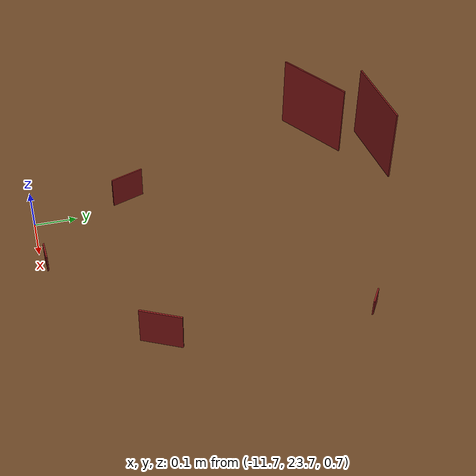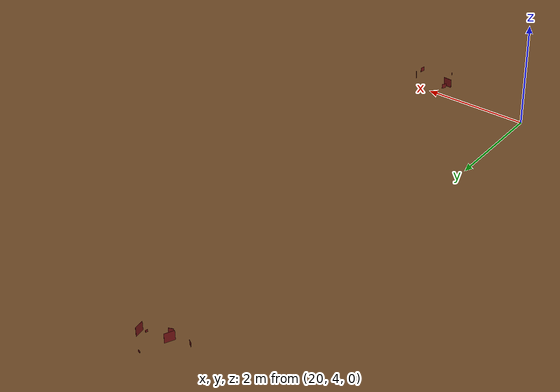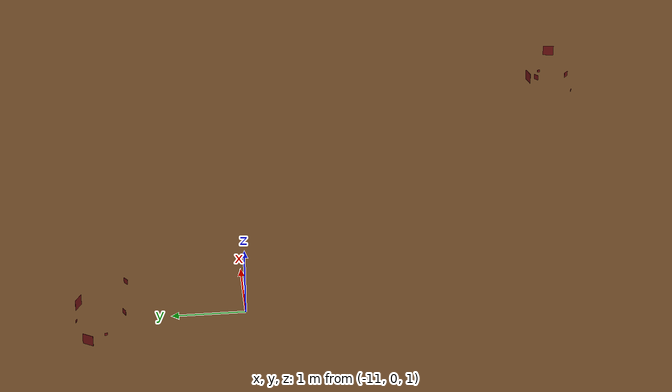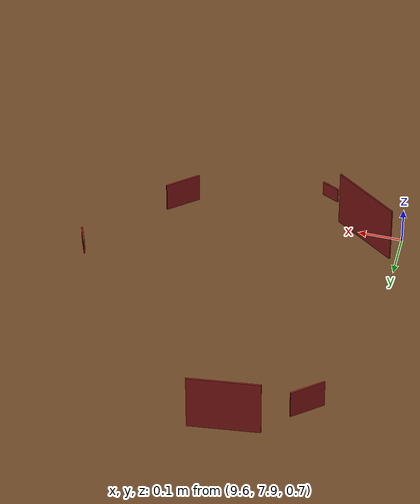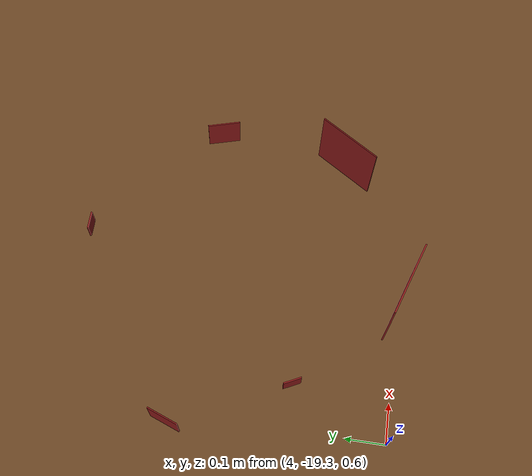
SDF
<sdf version="1.9">
 <world name="flatforest">
  <scene>
   <grid>false</grid>
   <ambient>1.0 1.0 1.0 1</ambient>
   <background>0.6 0.8 1.0 1</background>
   <shadows>false</shadows>
  </scene>
  <physics name="20ms" type="dart">
   <max_step_size>0.02</max_step_size>
   <real_time_factor>2.0</real_time_factor>
   <real_time_update_rate>100</real_time_update_rate>
   <dart>
    <collision_detector>bullet</collision_detector>
    <solver><solver_type>dantzig</solver_type></solver>
   </dart>
  </physics>
  <plugin name="ignition::gazebo::systems::Physics" filename="ignition-gazebo-physics-system"/>
  <plugin name="ignition::gazebo::systems::Sensors" filename="ignition-gazebo-sensors-system">
   <render_engine>ogre2</render_engine>
  </plugin>
  <plugin name="ignition::gazebo::systems::SceneBroadcaster" filename="ignition-gazebo-scene-broadcaster-system"/>
  <plugin name="ignition::gazebo::systems::UserCommands" filename="ignition-gazebo-user-commands-system"/>
  <plugin name="ignition::gazebo::systems::Imu" filename="libignition-gazebo-imu-system.so"/>
  <gravity>0 0 -9.8</gravity>
  <magnetic_field>6e-06 2.3e-05 -4.2e-05</magnetic_field>
  <atmosphere type="adiabatic"/>
  <model name="ground_plane">
   <static>true</static>
   <link name="link">
    <collision name="collision">
     <geometry><plane><normal>0 0 1</normal><size>110 110</size></plane></geometry>
     <surface><friction><ode><mu>50</mu></ode></friction></surface>
    </collision>
    <visual name="visual">
     <geometry><plane><normal>0 0 1</normal><size>110 110</size></plane></geometry>
     <material>
      <ambient>0.4 0.26 0.13 1</ambient>
      <diffuse>0.4 0.26 0.13 1</diffuse>
      <specular>0.1 0.1 0.1 1</specular>
     </material>
     <plugin filename="ignition-gazebo-label-system" name="ignition::gazebo::systems::Label">
      <label>1</label>
     </plugin>
    </visual>
   </link>
  </model>
  <light name="sun" type="directional">
   <pose>0 0 45 0 -0 0</pose>
   <intensity>1.0</intensity>
   <direction>-0.5 0.1 -0.9</direction>
   <diffuse>0.8 0.8 0.8 1</diffuse>
   <specular>0.2 0.2 0.2 1</specular>
   <attenuation>
    <range>1000</range>
    <linear>0.01</linear>
    <constant>0.90000000000000002</constant>
    <quadratic>0.001</quadratic>
   </attenuation>
   <spot><inner_angle>0</inner_angle><outer_angle>0</outer_angle><falloff>0</falloff></spot>
  </light>
  <model name="lesions_102">
   <static>true</static>
   <pose>-21.6479 0.5231 0 0 0 0</pose>
   <link name="link">
    <visual name="lesion_10">
     <pose>0.2472 0.0334 0.8630 0 0 0.38799</pose>
     <geometry><box><size>0.003 0.04 0.04</size></box></geometry>
     <material><ambient>0.55 0.1 0.1 1</ambient><diffuse>0.55 0.1 0.1 1</diffuse></material>
     <cast_shadows>false</cast_shadows>
     <plugin filename="ignition-gazebo-label-system" name="ignition::gazebo::systems::Label">
      <label>10</label>
     </plugin>
    </visual>
    <visual name="lesion_11">
     <pose>-0.1810 0.2558 1.1931 0 0 1.87503</pose>
     <geometry><box><size>0.003 0.04 0.04</size></box></geometry>
     <material><ambient>0.55 0.1 0.1 1</ambient><diffuse>0.55 0.1 0.1 1</diffuse></material>
     <cast_shadows>false</cast_shadows>
     <plugin filename="ignition-gazebo-label-system" name="ignition::gazebo::systems::Label">
      <label>11</label>
     </plugin>
    </visual>
    <visual name="lesion_12">
     <pose>-0.2961 0.1665 1.0417 0 0 2.28012</pose>
     <geometry><box><size>0.003 0.16 0.16</size></box></geometry>
     <material><ambient>0.55 0.1 0.1 1</ambient><diffuse>0.55 0.1 0.1 1</diffuse></material>
     <cast_shadows>false</cast_shadows>
     <plugin filename="ignition-gazebo-label-system" name="ignition::gazebo::systems::Label">
      <label>12</label>
     </plugin>
    </visual>
    <visual name="lesion_13">
     <pose>-0.4599 -0.2222 1.2302 0 0 3.45397</pose>
     <geometry><box><size>0.003 0.08 0.08</size></box></geometry>
     <material><ambient>0.55 0.1 0.1 1</ambient><diffuse>0.55 0.1 0.1 1</diffuse></material>
     <cast_shadows>false</cast_shadows>
     <plugin filename="ignition-gazebo-label-system" name="ignition::gazebo::systems::Label">
      <label>13</label>
     </plugin>
    </visual>
    <visual name="lesion_14">
     <pose>0.1015 -0.4620 1.0315 0 0 5.15206</pose>
     <geometry><box><size>0.003 0.16 0.16</size></box></geometry>
     <material><ambient>0.55 0.1 0.1 1</ambient><diffuse>0.55 0.1 0.1 1</diffuse></material>
     <cast_shadows>false</cast_shadows>
     <plugin filename="ignition-gazebo-label-system" name="ignition::gazebo::systems::Label">
      <label>14</label>
     </plugin>
    </visual>
    <visual name="lesion_15">
     <pose>0.2419 -0.1792 0.9591 0 0 6.02425</pose>
     <geometry><box><size>0.003 0.08 0.08</size></box></geometry>
     <material><ambient>0.55 0.1 0.1 1</ambient><diffuse>0.55 0.1 0.1 1</diffuse></material>
     <cast_shadows>false</cast_shadows>
     <plugin filename="ignition-gazebo-label-system" name="ignition::gazebo::systems::Label">
      <label>15</label>
     </plugin>
    </visual>
   </link>
  </model>
  <model name="lesions_2">
   <static>true</static>
   <pose>4.4015 -18.8129 0 0 0 0</pose>
   <link name="link">
    <visual name="lesion_16">
     <pose>0.2867 0.0106 0.7858 0 0 0.29102</pose>
     <geometry><box><size>0.003 0.08 0.08</size></box></geometry>
     <material><ambient>0.55 0.1 0.1 1</ambient><diffuse>0.55 0.1 0.1 1</diffuse></material>
     <cast_shadows>false</cast_shadows>
     <plugin filename="ignition-gazebo-label-system" name="ignition::gazebo::systems::Label">
      <label>16</label>
     </plugin>
    </visual>
    <visual name="lesion_17">
     <pose>-0.0798 0.2484 0.9085 0 0 1.59783</pose>
     <geometry><box><size>0.003 0.04 0.04</size></box></geometry>
     <material><ambient>0.55 0.1 0.1 1</ambient><diffuse>0.55 0.1 0.1 1</diffuse></material>
     <cast_shadows>false</cast_shadows>
     <plugin filename="ignition-gazebo-label-system" name="ignition::gazebo::systems::Label">
      <label>17</label>
     </plugin>
    </visual>
    <visual name="lesion_18">
     <pose>-0.4343 0.0375 0.6577 0 0 2.78888</pose>
     <geometry><box><size>0.003 0.08 0.08</size></box></geometry>
     <material><ambient>0.55 0.1 0.1 1</ambient><diffuse>0.55 0.1 0.1 1</diffuse></material>
     <cast_shadows>false</cast_shadows>
     <plugin filename="ignition-gazebo-label-system" name="ignition::gazebo::systems::Label">
      <label>18</label>
     </plugin>
    </visual>
    <visual name="lesion_19">
     <pose>-0.3618 -0.2440 0.8691 0 0 3.61042</pose>
     <geometry><box><size>0.003 0.04 0.04</size></box></geometry>
     <material><ambient>0.55 0.1 0.1 1</ambient><diffuse>0.55 0.1 0.1 1</diffuse></material>
     <cast_shadows>false</cast_shadows>
     <plugin filename="ignition-gazebo-label-system" name="ignition::gazebo::systems::Label">
      <label>19</label>
     </plugin>
    </visual>
    <visual name="lesion_20">
     <pose>-0.1839 -0.4399 1.0069 0 0 4.39341</pose>
     <geometry><box><size>0.003 0.16 0.16</size></box></geometry>
     <material><ambient>0.55 0.1 0.1 1</ambient><diffuse>0.55 0.1 0.1 1</diffuse></material>
     <cast_shadows>false</cast_shadows>
     <plugin filename="ignition-gazebo-label-system" name="ignition::gazebo::systems::Label">
      <label>20</label>
     </plugin>
    </visual>
    <visual name="lesion_21">
     <pose>0.2373 -0.3031 0.8300 0 0 5.69185</pose>
     <geometry><box><size>0.003 0.16 0.16</size></box></geometry>
     <material><ambient>0.55 0.1 0.1 1</ambient><diffuse>0.55 0.1 0.1 1</diffuse></material>
     <cast_shadows>false</cast_shadows>
     <plugin filename="ignition-gazebo-label-system" name="ignition::gazebo::systems::Label">
      <label>21</label>
     </plugin>
    </visual>
   </link>
  </model>
  <model name="lesions_118">
   <static>true</static>
   <pose>-18.5931 -9.2673 0 0 0 0</pose>
   <link name="link">
    <visual name="lesion_22">
     <pose>0.2283 0.1239 0.8571 0 0 0.63534</pose>
     <geometry><box><size>0.003 0.16 0.16</size></box></geometry>
     <material><ambient>0.55 0.1 0.1 1</ambient><diffuse>0.55 0.1 0.1 1</diffuse></material>
     <cast_shadows>false</cast_shadows>
     <plugin filename="ignition-gazebo-label-system" name="ignition::gazebo::systems::Label">
      <label>22</label>
     </plugin>
    </visual>
    <visual name="lesion_23">
     <pose>-0.2166 0.1929 0.9880 0 0 2.03870</pose>
     <geometry><box><size>0.003 0.08 0.08</size></box></geometry>
     <material><ambient>0.55 0.1 0.1 1</ambient><diffuse>0.55 0.1 0.1 1</diffuse></material>
     <cast_shadows>false</cast_shadows>
     <plugin filename="ignition-gazebo-label-system" name="ignition::gazebo::systems::Label">
      <label>23</label>
     </plugin>
    </visual>
    <visual name="lesion_24">
     <pose>-0.3650 0.1025 1.1903 0 0 2.54758</pose>
     <geometry><box><size>0.003 0.04 0.04</size></box></geometry>
     <material><ambient>0.55 0.1 0.1 1</ambient><diffuse>0.55 0.1 0.1 1</diffuse></material>
     <cast_shadows>false</cast_shadows>
     <plugin filename="ignition-gazebo-label-system" name="ignition::gazebo::systems::Label">
      <label>24</label>
     </plugin>
    </visual>
    <visual name="lesion_25">
     <pose>-0.4209 -0.2182 1.0676 0 0 3.47601</pose>
     <geometry><box><size>0.003 0.04 0.04</size></box></geometry>
     <material><ambient>0.55 0.1 0.1 1</ambient><diffuse>0.55 0.1 0.1 1</diffuse></material>
     <cast_shadows>false</cast_shadows>
     <plugin filename="ignition-gazebo-label-system" name="ignition::gazebo::systems::Label">
      <label>25</label>
     </plugin>
    </visual>
    <visual name="lesion_26">
     <pose>-0.1364 -0.4303 0.8069 0 0 4.51742</pose>
     <geometry><box><size>0.003 0.08 0.08</size></box></geometry>
     <material><ambient>0.55 0.1 0.1 1</ambient><diffuse>0.55 0.1 0.1 1</diffuse></material>
     <cast_shadows>false</cast_shadows>
     <plugin filename="ignition-gazebo-label-system" name="ignition::gazebo::systems::Label">
      <label>26</label>
     </plugin>
    </visual>
    <visual name="lesion_27">
     <pose>0.2774 -0.2091 0.7867 0 0 5.96991</pose>
     <geometry><box><size>0.003 0.16 0.16</size></box></geometry>
     <material><ambient>0.55 0.1 0.1 1</ambient><diffuse>0.55 0.1 0.1 1</diffuse></material>
     <cast_shadows>false</cast_shadows>
     <plugin filename="ignition-gazebo-label-system" name="ignition::gazebo::systems::Label">
      <label>27</label>
     </plugin>
    </visual>
   </link>
  </model>
  <model name="lesions_120">
   <static>true</static>
   <pose>21.4385 5.0004 0 0 0 0</pose>
   <link name="link">
    <visual name="lesion_28">
     <pose>0.2158 0.0888 1.0229 0 0 0.57437</pose>
     <geometry><box><size>0.003 0.16 0.16</size></box></geometry>
     <material><ambient>0.55 0.1 0.1 1</ambient><diffuse>0.55 0.1 0.1 1</diffuse></material>
     <cast_shadows>false</cast_shadows>
     <plugin filename="ignition-gazebo-label-system" name="ignition::gazebo::systems::Label">
      <label>28</label>
     </plugin>
    </visual>
    <visual name="lesion_29">
     <pose>-0.0260 0.2333 0.9021 0 0 1.43691</pose>
     <geometry><box><size>0.003 0.04 0.04</size></box></geometry>
     <material><ambient>0.55 0.1 0.1 1</ambient><diffuse>0.55 0.1 0.1 1</diffuse></material>
     <cast_shadows>false</cast_shadows>
     <plugin filename="ignition-gazebo-label-system" name="ignition::gazebo::systems::Label">
      <label>29</label>
     </plugin>
    </visual>
    <visual name="lesion_30">
     <pose>-0.3734 0.0807 0.9320 0 0 2.61258</pose>
     <geometry><box><size>0.003 0.08 0.08</size></box></geometry>
     <material><ambient>0.55 0.1 0.1 1</ambient><diffuse>0.55 0.1 0.1 1</diffuse></material>
     <cast_shadows>false</cast_shadows>
     <plugin filename="ignition-gazebo-label-system" name="ignition::gazebo::systems::Label">
      <label>30</label>
     </plugin>
    </visual>
    <visual name="lesion_31">
     <pose>-0.3029 -0.2952 0.9963 0 0 3.84912</pose>
     <geometry><box><size>0.003 0.04 0.04</size></box></geometry>
     <material><ambient>0.55 0.1 0.1 1</ambient><diffuse>0.55 0.1 0.1 1</diffuse></material>
     <cast_shadows>false</cast_shadows>
     <plugin filename="ignition-gazebo-label-system" name="ignition::gazebo::systems::Label">
      <label>31</label>
     </plugin>
    </visual>
    <visual name="lesion_32">
     <pose>-0.1058 -0.4983 0.6511 0 0 4.62471</pose>
     <geometry><box><size>0.003 0.16 0.16</size></box></geometry>
     <material><ambient>0.55 0.1 0.1 1</ambient><diffuse>0.55 0.1 0.1 1</diffuse></material>
     <cast_shadows>false</cast_shadows>
     <plugin filename="ignition-gazebo-label-system" name="ignition::gazebo::systems::Label">
      <label>32</label>
     </plugin>
    </visual>
    <visual name="lesion_33">
     <pose>0.2469 -0.1659 0.9616 0 0 6.06750</pose>
     <geometry><box><size>0.003 0.08 0.08</size></box></geometry>
     <material><ambient>0.55 0.1 0.1 1</ambient><diffuse>0.55 0.1 0.1 1</diffuse></material>
     <cast_shadows>false</cast_shadows>
     <plugin filename="ignition-gazebo-label-system" name="ignition::gazebo::systems::Label">
      <label>33</label>
     </plugin>
    </visual>
   </link>
  </model>
  <model name="lesions_133">
   <static>true</static>
   <pose>4.3214 23.0981 0 0 0 0</pose>
   <link name="link">
    <visual name="lesion_34">
     <pose>0.2770 -0.0623 1.1928 0 0 0.09786</pose>
     <geometry><box><size>0.003 0.16 0.16</size></box></geometry>
     <material><ambient>0.55 0.1 0.1 1</ambient><diffuse>0.55 0.1 0.1 1</diffuse></material>
     <cast_shadows>false</cast_shadows>
     <plugin filename="ignition-gazebo-label-system" name="ignition::gazebo::systems::Label">
      <label>34</label>
     </plugin>
    </visual>
    <visual name="lesion_35">
     <pose>-0.2545 0.2304 0.6852 0 0 2.08365</pose>
     <geometry><box><size>0.003 0.08 0.08</size></box></geometry>
     <material><ambient>0.55 0.1 0.1 1</ambient><diffuse>0.55 0.1 0.1 1</diffuse></material>
     <cast_shadows>false</cast_shadows>
     <plugin filename="ignition-gazebo-label-system" name="ignition::gazebo::systems::Label">
      <label>35</label>
     </plugin>
    </visual>
    <visual name="lesion_36">
     <pose>-0.3579 0.1323 1.0880 0 0 2.46953</pose>
     <geometry><box><size>0.003 0.16 0.16</size></box></geometry>
     <material><ambient>0.55 0.1 0.1 1</ambient><diffuse>0.55 0.1 0.1 1</diffuse></material>
     <cast_shadows>false</cast_shadows>
     <plugin filename="ignition-gazebo-label-system" name="ignition::gazebo::systems::Label">
      <label>36</label>
     </plugin>
    </visual>
    <visual name="lesion_37">
     <pose>-0.4222 -0.2165 0.9902 0 0 3.47066</pose>
     <geometry><box><size>0.003 0.08 0.08</size></box></geometry>
     <material><ambient>0.55 0.1 0.1 1</ambient><diffuse>0.55 0.1 0.1 1</diffuse></material>
     <cast_shadows>false</cast_shadows>
     <plugin filename="ignition-gazebo-label-system" name="ignition::gazebo::systems::Label">
      <label>37</label>
     </plugin>
    </visual>
    <visual name="lesion_38">
     <pose>-0.1008 -0.4428 1.1145 0 0 4.62502</pose>
     <geometry><box><size>0.003 0.04 0.04</size></box></geometry>
     <material><ambient>0.55 0.1 0.1 1</ambient><diffuse>0.55 0.1 0.1 1</diffuse></material>
     <cast_shadows>false</cast_shadows>
     <plugin filename="ignition-gazebo-label-system" name="ignition::gazebo::systems::Label">
      <label>38</label>
     </plugin>
    </visual>
    <visual name="lesion_39">
     <pose>0.2376 -0.1098 1.1830 0 0 6.23969</pose>
     <geometry><box><size>0.003 0.04 0.04</size></box></geometry>
     <material><ambient>0.55 0.1 0.1 1</ambient><diffuse>0.55 0.1 0.1 1</diffuse></material>
     <cast_shadows>false</cast_shadows>
     <plugin filename="ignition-gazebo-label-system" name="ignition::gazebo::systems::Label">
      <label>39</label>
     </plugin>
    </visual>
   </link>
  </model>
  <model name="lesions_136">
   <static>true</static>
   <pose>-6.8289 -15.4358 0 0 0 0</pose>
   <link name="link">
    <visual name="lesion_40">
     <pose>0.2988 -0.0873 0.8286 0 0 0.02475</pose>
     <geometry><box><size>0.003 0.08 0.08</size></box></geometry>
     <material><ambient>0.55 0.1 0.1 1</ambient><diffuse>0.55 0.1 0.1 1</diffuse></material>
     <cast_shadows>false</cast_shadows>
     <plugin filename="ignition-gazebo-label-system" name="ignition::gazebo::systems::Label">
      <label>40</label>
     </plugin>
    </visual>
    <visual name="lesion_41">
     <pose>0.0100 0.2490 1.0531 0 0 1.34210</pose>
     <geometry><box><size>0.003 0.16 0.16</size></box></geometry>
     <material><ambient>0.55 0.1 0.1 1</ambient><diffuse>0.55 0.1 0.1 1</diffuse></material>
     <cast_shadows>false</cast_shadows>
     <plugin filename="ignition-gazebo-label-system" name="ignition::gazebo::systems::Label">
      <label>41</label>
     </plugin>
    </visual>
    <visual name="lesion_42">
     <pose>-0.3966 0.0977 0.7057 0 0 2.60476</pose>
     <geometry><box><size>0.003 0.04 0.04</size></box></geometry>
     <material><ambient>0.55 0.1 0.1 1</ambient><diffuse>0.55 0.1 0.1 1</diffuse></material>
     <cast_shadows>false</cast_shadows>
     <plugin filename="ignition-gazebo-label-system" name="ignition::gazebo::systems::Label">
      <label>42</label>
     </plugin>
    </visual>
    <visual name="lesion_43">
     <pose>-0.4221 -0.1011 1.0126 0 0 3.15506</pose>
     <geometry><box><size>0.003 0.04 0.04</size></box></geometry>
     <material><ambient>0.55 0.1 0.1 1</ambient><diffuse>0.55 0.1 0.1 1</diffuse></material>
     <cast_shadows>false</cast_shadows>
     <plugin filename="ignition-gazebo-label-system" name="ignition::gazebo::systems::Label">
      <label>43</label>
     </plugin>
    </visual>
    <visual name="lesion_44">
     <pose>-0.0735 -0.4392 1.0108 0 0 4.70347</pose>
     <geometry><box><size>0.003 0.08 0.08</size></box></geometry>
     <material><ambient>0.55 0.1 0.1 1</ambient><diffuse>0.55 0.1 0.1 1</diffuse></material>
     <cast_shadows>false</cast_shadows>
     <plugin filename="ignition-gazebo-label-system" name="ignition::gazebo::systems::Label">
      <label>44</label>
     </plugin>
    </visual>
    <visual name="lesion_45">
     <pose>0.3068 -0.2817 1.1843 0 0 5.82663</pose>
     <geometry><box><size>0.003 0.16 0.16</size></box></geometry>
     <material><ambient>0.55 0.1 0.1 1</ambient><diffuse>0.55 0.1 0.1 1</diffuse></material>
     <cast_shadows>false</cast_shadows>
     <plugin filename="ignition-gazebo-label-system" name="ignition::gazebo::systems::Label">
      <label>45</label>
     </plugin>
    </visual>
   </link>
  </model>
  <model name="lesions_137">
   <static>true</static>
   <pose>-21.1328 23.2999 0 0 0 0</pose>
   <link name="link">
    <visual name="lesion_46">
     <pose>0.1769 0.1713 1.0334 0 0 0.82491</pose>
     <geometry><box><size>0.003 0.16 0.16</size></box></geometry>
     <material><ambient>0.55 0.1 0.1 1</ambient><diffuse>0.55 0.1 0.1 1</diffuse></material>
     <cast_shadows>false</cast_shadows>
     <plugin filename="ignition-gazebo-label-system" name="ignition::gazebo::systems::Label">
      <label>46</label>
     </plugin>
    </visual>
    <visual name="lesion_47">
     <pose>-0.1297 0.2550 0.9776 0 0 1.73794</pose>
     <geometry><box><size>0.003 0.16 0.16</size></box></geometry>
     <material><ambient>0.55 0.1 0.1 1</ambient><diffuse>0.55 0.1 0.1 1</diffuse></material>
     <cast_shadows>false</cast_shadows>
     <plugin filename="ignition-gazebo-label-system" name="ignition::gazebo::systems::Label">
      <label>47</label>
     </plugin>
    </visual>
    <visual name="lesion_48">
     <pose>-0.4307 -0.0651 0.7900 0 0 3.05495</pose>
     <geometry><box><size>0.003 0.04 0.04</size></box></geometry>
     <material><ambient>0.55 0.1 0.1 1</ambient><diffuse>0.55 0.1 0.1 1</diffuse></material>
     <cast_shadows>false</cast_shadows>
     <plugin filename="ignition-gazebo-label-system" name="ignition::gazebo::systems::Label">
      <label>48</label>
     </plugin>
    </visual>
    <visual name="lesion_49">
     <pose>-0.3281 -0.2834 1.1385 0 0 3.76919</pose>
     <geometry><box><size>0.003 0.08 0.08</size></box></geometry>
     <material><ambient>0.55 0.1 0.1 1</ambient><diffuse>0.55 0.1 0.1 1</diffuse></material>
     <cast_shadows>false</cast_shadows>
     <plugin filename="ignition-gazebo-label-system" name="ignition::gazebo::systems::Label">
      <label>49</label>
     </plugin>
    </visual>
    <visual name="lesion_50">
     <pose>-0.2034 -0.4270 1.0193 0 0 4.32991</pose>
     <geometry><box><size>0.003 0.04 0.04</size></box></geometry>
     <material><ambient>0.55 0.1 0.1 1</ambient><diffuse>0.55 0.1 0.1 1</diffuse></material>
     <cast_shadows>false</cast_shadows>
     <plugin filename="ignition-gazebo-label-system" name="ignition::gazebo::systems::Label">
      <label>50</label>
     </plugin>
    </visual>
    <visual name="lesion_51">
     <pose>0.2275 -0.3116 1.1096 0 0 5.65783</pose>
     <geometry><box><size>0.003 0.08 0.08</size></box></geometry>
     <material><ambient>0.55 0.1 0.1 1</ambient><diffuse>0.55 0.1 0.1 1</diffuse></material>
     <cast_shadows>false</cast_shadows>
     <plugin filename="ignition-gazebo-label-system" name="ignition::gazebo::systems::Label">
      <label>51</label>
     </plugin>
    </visual>
   </link>
  </model>
  <model name="lesions_3">
   <static>true</static>
   <pose>-9.8494 11.6053 0 0 0 0</pose>
   <link name="link">
    <visual name="lesion_52">
     <pose>0.2112 0.1213 0.8428 0 0 0.65800</pose>
     <geometry><box><size>0.003 0.08 0.08</size></box></geometry>
     <material><ambient>0.55 0.1 0.1 1</ambient><diffuse>0.55 0.1 0.1 1</diffuse></material>
     <cast_shadows>false</cast_shadows>
     <plugin filename="ignition-gazebo-label-system" name="ignition::gazebo::systems::Label">
      <label>52</label>
     </plugin>
    </visual>
    <visual name="lesion_53">
     <pose>-0.1292 0.2607 0.8529 0 0 1.73395</pose>
     <geometry><box><size>0.003 0.04 0.04</size></box></geometry>
     <material><ambient>0.55 0.1 0.1 1</ambient><diffuse>0.55 0.1 0.1 1</diffuse></material>
     <cast_shadows>false</cast_shadows>
     <plugin filename="ignition-gazebo-label-system" name="ignition::gazebo::systems::Label">
      <label>53</label>
     </plugin>
    </visual>
    <visual name="lesion_54">
     <pose>-0.4410 0.0376 0.7270 0 0 2.79454</pose>
     <geometry><box><size>0.003 0.16 0.16</size></box></geometry>
     <material><ambient>0.55 0.1 0.1 1</ambient><diffuse>0.55 0.1 0.1 1</diffuse></material>
     <cast_shadows>false</cast_shadows>
     <plugin filename="ignition-gazebo-label-system" name="ignition::gazebo::systems::Label">
      <label>54</label>
     </plugin>
    </visual>
    <visual name="lesion_55">
     <pose>-0.4528 -0.2119 0.6696 0 0 3.43480</pose>
     <geometry><box><size>0.003 0.08 0.08</size></box></geometry>
     <material><ambient>0.55 0.1 0.1 1</ambient><diffuse>0.55 0.1 0.1 1</diffuse></material>
     <cast_shadows>false</cast_shadows>
     <plugin filename="ignition-gazebo-label-system" name="ignition::gazebo::systems::Label">
      <label>55</label>
     </plugin>
    </visual>
    <visual name="lesion_56">
     <pose>-0.2217 -0.4213 0.9829 0 0 4.27666</pose>
     <geometry><box><size>0.003 0.16 0.16</size></box></geometry>
     <material><ambient>0.55 0.1 0.1 1</ambient><diffuse>0.55 0.1 0.1 1</diffuse></material>
     <cast_shadows>false</cast_shadows>
     <plugin filename="ignition-gazebo-label-system" name="ignition::gazebo::systems::Label">
      <label>56</label>
     </plugin>
    </visual>
    <visual name="lesion_57">
     <pose>0.1617 -0.3377 0.9596 0 0 5.47862</pose>
     <geometry><box><size>0.003 0.04 0.04</size></box></geometry>
     <material><ambient>0.55 0.1 0.1 1</ambient><diffuse>0.55 0.1 0.1 1</diffuse></material>
     <cast_shadows>false</cast_shadows>
     <plugin filename="ignition-gazebo-label-system" name="ignition::gazebo::systems::Label">
      <label>57</label>
     </plugin>
    </visual>
   </link>
  </model>
  <model name="lesions_140">
   <static>true</static>
   <pose>10.8505 -6.6121 0 0 0 0</pose>
   <link name="link">
    <visual name="lesion_58">
     <pose>0.3076 0.0324 0.7207 0 0 0.32847</pose>
     <geometry><box><size>0.003 0.16 0.16</size></box></geometry>
     <material><ambient>0.55 0.1 0.1 1</ambient><diffuse>0.55 0.1 0.1 1</diffuse></material>
     <cast_shadows>false</cast_shadows>
     <plugin filename="ignition-gazebo-label-system" name="ignition::gazebo::systems::Label">
      <label>58</label>
     </plugin>
    </visual>
    <visual name="lesion_59">
     <pose>-0.1314 0.2570 1.1418 0 0 1.74168</pose>
     <geometry><box><size>0.003 0.04 0.04</size></box></geometry>
     <material><ambient>0.55 0.1 0.1 1</ambient><diffuse>0.55 0.1 0.1 1</diffuse></material>
     <cast_shadows>false</cast_shadows>
     <plugin filename="ignition-gazebo-label-system" name="ignition::gazebo::systems::Label">
      <label>59</label>
     </plugin>
    </visual>
    <visual name="lesion_60">
     <pose>-0.3752 0.0912 0.9850 0 0 2.58972</pose>
     <geometry><box><size>0.003 0.16 0.16</size></box></geometry>
     <material><ambient>0.55 0.1 0.1 1</ambient><diffuse>0.55 0.1 0.1 1</diffuse></material>
     <cast_shadows>false</cast_shadows>
     <plugin filename="ignition-gazebo-label-system" name="ignition::gazebo::systems::Label">
      <label>60</label>
     </plugin>
    </visual>
    <visual name="lesion_61">
     <pose>-0.2473 -0.3741 1.0693 0 0 4.14531</pose>
     <geometry><box><size>0.003 0.04 0.04</size></box></geometry>
     <material><ambient>0.55 0.1 0.1 1</ambient><diffuse>0.55 0.1 0.1 1</diffuse></material>
     <cast_shadows>false</cast_shadows>
     <plugin filename="ignition-gazebo-label-system" name="ignition::gazebo::systems::Label">
      <label>61</label>
     </plugin>
    </visual>
    <visual name="lesion_62">
     <pose>0.0296 -0.4779 1.1837 0 0 4.96899</pose>
     <geometry><box><size>0.003 0.08 0.08</size></box></geometry>
     <material><ambient>0.55 0.1 0.1 1</ambient><diffuse>0.55 0.1 0.1 1</diffuse></material>
     <cast_shadows>false</cast_shadows>
     <plugin filename="ignition-gazebo-label-system" name="ignition::gazebo::systems::Label">
      <label>62</label>
     </plugin>
    </visual>
    <visual name="lesion_63">
     <pose>0.1595 -0.3434 1.0401 0 0 5.46196</pose>
     <geometry><box><size>0.003 0.08 0.08</size></box></geometry>
     <material><ambient>0.55 0.1 0.1 1</ambient><diffuse>0.55 0.1 0.1 1</diffuse></material>
     <cast_shadows>false</cast_shadows>
     <plugin filename="ignition-gazebo-label-system" name="ignition::gazebo::systems::Label">
      <label>63</label>
     </plugin>
    </visual>
   </link>
  </model>
  <model name="lesions_1">
   <static>true</static>
   <pose>9.9617 8.3438 0 0 0 0</pose>
   <link name="link">
    <visual name="lesion_64">
     <pose>0.2523 0.0251 1.0633 0 0 0.36001</pose>
     <geometry><box><size>0.003 0.04 0.04</size></box></geometry>
     <material><ambient>0.55 0.1 0.1 1</ambient><diffuse>0.55 0.1 0.1 1</diffuse></material>
     <cast_shadows>false</cast_shadows>
     <plugin filename="ignition-gazebo-label-system" name="ignition::gazebo::systems::Label">
      <label>64</label>
     </plugin>
    </visual>
    <visual name="lesion_65">
     <pose>-0.1102 0.2653 0.8956 0 0 1.68012</pose>
     <geometry><box><size>0.003 0.16 0.16</size></box></geometry>
     <material><ambient>0.55 0.1 0.1 1</ambient><diffuse>0.55 0.1 0.1 1</diffuse></material>
     <cast_shadows>false</cast_shadows>
     <plugin filename="ignition-gazebo-label-system" name="ignition::gazebo::systems::Label">
      <label>65</label>
     </plugin>
    </visual>
    <visual name="lesion_66">
     <pose>-0.2735 0.1820 0.8618 0 0 2.20088</pose>
     <geometry><box><size>0.003 0.08 0.08</size></box></geometry>
     <material><ambient>0.55 0.1 0.1 1</ambient><diffuse>0.55 0.1 0.1 1</diffuse></material>
     <cast_shadows>false</cast_shadows>
     <plugin filename="ignition-gazebo-label-system" name="ignition::gazebo::systems::Label">
      <label>66</label>
     </plugin>
    </visual>
    <visual name="lesion_67">
     <pose>-0.2778 -0.4257 0.7799 0 0 4.15055</pose>
     <geometry><box><size>0.003 0.16 0.16</size></box></geometry>
     <material><ambient>0.55 0.1 0.1 1</ambient><diffuse>0.55 0.1 0.1 1</diffuse></material>
     <cast_shadows>false</cast_shadows>
     <plugin filename="ignition-gazebo-label-system" name="ignition::gazebo::systems::Label">
      <label>67</label>
     </plugin>
    </visual>
    <visual name="lesion_68">
     <pose>-0.2009 -0.4010 0.8706 0 0 4.30779</pose>
     <geometry><box><size>0.003 0.04 0.04</size></box></geometry>
     <material><ambient>0.55 0.1 0.1 1</ambient><diffuse>0.55 0.1 0.1 1</diffuse></material>
     <cast_shadows>false</cast_shadows>
     <plugin filename="ignition-gazebo-label-system" name="ignition::gazebo::systems::Label">
      <label>68</label>
     </plugin>
    </visual>
    <visual name="lesion_69">
     <pose>0.1343 -0.3776 0.8103 0 0 5.34173</pose>
     <geometry><box><size>0.003 0.08 0.08</size></box></geometry>
     <material><ambient>0.55 0.1 0.1 1</ambient><diffuse>0.55 0.1 0.1 1</diffuse></material>
     <cast_shadows>false</cast_shadows>
     <plugin filename="ignition-gazebo-label-system" name="ignition::gazebo::systems::Label">
      <label>69</label>
     </plugin>
    </visual>
   </link>
  </model>
  <model name="lesions_145">
   <static>true</static>
   <pose>16.439 21.7971 0 0 0 0</pose>
   <link name="link">
    <visual name="lesion_70">
     <pose>0.2683 -0.0099 1.0508 0 0 0.25001</pose>
     <geometry><box><size>0.003 0.04 0.04</size></box></geometry>
     <material><ambient>0.55 0.1 0.1 1</ambient><diffuse>0.55 0.1 0.1 1</diffuse></material>
     <cast_shadows>false</cast_shadows>
     <plugin filename="ignition-gazebo-label-system" name="ignition::gazebo::systems::Label">
      <label>70</label>
     </plugin>
    </visual>
    <visual name="lesion_71">
     <pose>0.0635 0.2295 1.1239 0 0 1.18088</pose>
     <geometry><box><size>0.003 0.04 0.04</size></box></geometry>
     <material><ambient>0.55 0.1 0.1 1</ambient><diffuse>0.55 0.1 0.1 1</diffuse></material>
     <cast_shadows>false</cast_shadows>
     <plugin filename="ignition-gazebo-label-system" name="ignition::gazebo::systems::Label">
      <label>71</label>
     </plugin>
    </visual>
    <visual name="lesion_72">
     <pose>-0.3900 0.1242 0.7602 0 0 2.53730</pose>
     <geometry><box><size>0.003 0.16 0.16</size></box></geometry>
     <material><ambient>0.55 0.1 0.1 1</ambient><diffuse>0.55 0.1 0.1 1</diffuse></material>
     <cast_shadows>false</cast_shadows>
     <plugin filename="ignition-gazebo-label-system" name="ignition::gazebo::systems::Label">
      <label>72</label>
     </plugin>
    </visual>
    <visual name="lesion_73">
     <pose>-0.2993 -0.3292 0.9826 0 0 3.93563</pose>
     <geometry><box><size>0.003 0.08 0.08</size></box></geometry>
     <material><ambient>0.55 0.1 0.1 1</ambient><diffuse>0.55 0.1 0.1 1</diffuse></material>
     <cast_shadows>false</cast_shadows>
     <plugin filename="ignition-gazebo-label-system" name="ignition::gazebo::systems::Label">
      <label>73</label>
     </plugin>
    </visual>
    <visual name="lesion_74">
     <pose>-0.0935 -0.4516 0.7944 0 0 4.64761</pose>
     <geometry><box><size>0.003 0.08 0.08</size></box></geometry>
     <material><ambient>0.55 0.1 0.1 1</ambient><diffuse>0.55 0.1 0.1 1</diffuse></material>
     <cast_shadows>false</cast_shadows>
     <plugin filename="ignition-gazebo-label-system" name="ignition::gazebo::systems::Label">
      <label>74</label>
     </plugin>
    </visual>
    <visual name="lesion_75">
     <pose>0.2729 -0.1764 0.8692 0 0 6.05423</pose>
     <geometry><box><size>0.003 0.16 0.16</size></box></geometry>
     <material><ambient>0.55 0.1 0.1 1</ambient><diffuse>0.55 0.1 0.1 1</diffuse></material>
     <cast_shadows>false</cast_shadows>
     <plugin filename="ignition-gazebo-label-system" name="ignition::gazebo::systems::Label">
      <label>75</label>
     </plugin>
    </visual>
   </link>
  </model>
  <model name="lesions_149">
   <static>true</static>
   <pose>20.598 13.3211 0 0 0 0</pose>
   <link name="link">
    <visual name="lesion_76">
     <pose>0.2841 -0.0514 0.9295 0 0 0.12615</pose>
     <geometry><box><size>0.003 0.16 0.16</size></box></geometry>
     <material><ambient>0.55 0.1 0.1 1</ambient><diffuse>0.55 0.1 0.1 1</diffuse></material>
     <cast_shadows>false</cast_shadows>
     <plugin filename="ignition-gazebo-label-system" name="ignition::gazebo::systems::Label">
      <label>76</label>
     </plugin>
    </visual>
    <visual name="lesion_77">
     <pose>0.0321 0.2283 0.8511 0 0 1.26486</pose>
     <geometry><box><size>0.003 0.04 0.04</size></box></geometry>
     <material><ambient>0.55 0.1 0.1 1</ambient><diffuse>0.55 0.1 0.1 1</diffuse></material>
     <cast_shadows>false</cast_shadows>
     <plugin filename="ignition-gazebo-label-system" name="ignition::gazebo::systems::Label">
      <label>77</label>
     </plugin>
    </visual>
    <visual name="lesion_78">
     <pose>-0.4123 0.0699 1.2247 0 0 2.68875</pose>
     <geometry><box><size>0.003 0.16 0.16</size></box></geometry>
     <material><ambient>0.55 0.1 0.1 1</ambient><diffuse>0.55 0.1 0.1 1</diffuse></material>
     <cast_shadows>false</cast_shadows>
     <plugin filename="ignition-gazebo-label-system" name="ignition::gazebo::systems::Label">
      <label>78</label>
     </plugin>
    </visual>
    <visual name="lesion_79">
     <pose>-0.2957 -0.4326 0.6943 0 0 4.12210</pose>
     <geometry><box><size>0.003 0.08 0.08</size></box></geometry>
     <material><ambient>0.55 0.1 0.1 1</ambient><diffuse>0.55 0.1 0.1 1</diffuse></material>
     <cast_shadows>false</cast_shadows>
     <plugin filename="ignition-gazebo-label-system" name="ignition::gazebo::systems::Label">
      <label>79</label>
     </plugin>
    </visual>
    <visual name="lesion_80">
     <pose>0.0607 -0.4345 0.7507 0 0 5.08238</pose>
     <geometry><box><size>0.003 0.08 0.08</size></box></geometry>
     <material><ambient>0.55 0.1 0.1 1</ambient><diffuse>0.55 0.1 0.1 1</diffuse></material>
     <cast_shadows>false</cast_shadows>
     <plugin filename="ignition-gazebo-label-system" name="ignition::gazebo::systems::Label">
      <label>80</label>
     </plugin>
    </visual>
    <visual name="lesion_81">
     <pose>0.2602 -0.1626 0.8278 0 0 6.08572</pose>
     <geometry><box><size>0.003 0.04 0.04</size></box></geometry>
     <material><ambient>0.55 0.1 0.1 1</ambient><diffuse>0.55 0.1 0.1 1</diffuse></material>
     <cast_shadows>false</cast_shadows>
     <plugin filename="ignition-gazebo-label-system" name="ignition::gazebo::systems::Label">
      <label>81</label>
     </plugin>
    </visual>
   </link>
  </model>
  <model name="lesions_154">
   <static>true</static>
   <pose>-11.3079 24.1526 0 0 0 0</pose>
   <link name="link">
    <visual name="lesion_82">
     <pose>0.1182 0.2148 0.8153 0 0 1.02586</pose>
     <geometry><box><size>0.003 0.04 0.04</size></box></geometry>
     <material><ambient>0.55 0.1 0.1 1</ambient><diffuse>0.55 0.1 0.1 1</diffuse></material>
     <cast_shadows>false</cast_shadows>
     <plugin filename="ignition-gazebo-label-system" name="ignition::gazebo::systems::Label">
      <label>82</label>
     </plugin>
    </visual>
    <visual name="lesion_83">
     <pose>-0.1194 0.2659 1.0936 0 0 1.70516</pose>
     <geometry><box><size>0.003 0.16 0.16</size></box></geometry>
     <material><ambient>0.55 0.1 0.1 1</ambient><diffuse>0.55 0.1 0.1 1</diffuse></material>
     <cast_shadows>false</cast_shadows>
     <plugin filename="ignition-gazebo-label-system" name="ignition::gazebo::systems::Label">
      <label>83</label>
     </plugin>
    </visual>
    <visual name="lesion_84">
     <pose>-0.2596 0.1760 1.0478 0 0 2.17778</pose>
     <geometry><box><size>0.003 0.16 0.16</size></box></geometry>
     <material><ambient>0.55 0.1 0.1 1</ambient><diffuse>0.55 0.1 0.1 1</diffuse></material>
     <cast_shadows>false</cast_shadows>
     <plugin filename="ignition-gazebo-label-system" name="ignition::gazebo::systems::Label">
      <label>84</label>
     </plugin>
    </visual>
    <visual name="lesion_85">
     <pose>-0.4244 -0.2203 0.7469 0 0 3.47828</pose>
     <geometry><box><size>0.003 0.08 0.08</size></box></geometry>
     <material><ambient>0.55 0.1 0.1 1</ambient><diffuse>0.55 0.1 0.1 1</diffuse></material>
     <cast_shadows>false</cast_shadows>
     <plugin filename="ignition-gazebo-label-system" name="ignition::gazebo::systems::Label">
      <label>85</label>
     </plugin>
    </visual>
    <visual name="lesion_86">
     <pose>-0.0527 -0.4397 0.9271 0 0 4.76420</pose>
     <geometry><box><size>0.003 0.04 0.04</size></box></geometry>
     <material><ambient>0.55 0.1 0.1 1</ambient><diffuse>0.55 0.1 0.1 1</diffuse></material>
     <cast_shadows>false</cast_shadows>
     <plugin filename="ignition-gazebo-label-system" name="ignition::gazebo::systems::Label">
      <label>86</label>
     </plugin>
    </visual>
    <visual name="lesion_87">
     <pose>0.2780 -0.2617 1.0352 0 0 5.84030</pose>
     <geometry><box><size>0.003 0.08 0.08</size></box></geometry>
     <material><ambient>0.55 0.1 0.1 1</ambient><diffuse>0.55 0.1 0.1 1</diffuse></material>
     <cast_shadows>false</cast_shadows>
     <plugin filename="ignition-gazebo-label-system" name="ignition::gazebo::systems::Label">
      <label>87</label>
     </plugin>
    </visual>
   </link>
  </model>
  <model name="lesions_157">
   <static>true</static>
   <pose>-5.2208 -5.0045 0 0 0 0</pose>
   <link name="link">
    <visual name="lesion_88">
     <pose>0.2644 0.0081 0.8637 0 0 0.30242</pose>
     <geometry><box><size>0.003 0.04 0.04</size></box></geometry>
     <material><ambient>0.55 0.1 0.1 1</ambient><diffuse>0.55 0.1 0.1 1</diffuse></material>
     <cast_shadows>false</cast_shadows>
     <plugin filename="ignition-gazebo-label-system" name="ignition::gazebo::systems::Label">
      <label>88</label>
     </plugin>
    </visual>
    <visual name="lesion_89">
     <pose>-0.1728 0.2500 1.0413 0 0 1.85813</pose>
     <geometry><box><size>0.003 0.16 0.16</size></box></geometry>
     <material><ambient>0.55 0.1 0.1 1</ambient><diffuse>0.55 0.1 0.1 1</diffuse></material>
     <cast_shadows>false</cast_shadows>
     <plugin filename="ignition-gazebo-label-system" name="ignition::gazebo::systems::Label">
      <label>89</label>
     </plugin>
    </visual>
    <visual name="lesion_90">
     <pose>-0.2914 0.1456 1.0967 0 0 2.31056</pose>
     <geometry><box><size>0.003 0.08 0.08</size></box></geometry>
     <material><ambient>0.55 0.1 0.1 1</ambient><diffuse>0.55 0.1 0.1 1</diffuse></material>
     <cast_shadows>false</cast_shadows>
     <plugin filename="ignition-gazebo-label-system" name="ignition::gazebo::systems::Label">
      <label>90</label>
     </plugin>
    </visual>
    <visual name="lesion_91">
     <pose>-0.2804 -0.3161 1.1121 0 0 3.94954</pose>
     <geometry><box><size>0.003 0.08 0.08</size></box></geometry>
     <material><ambient>0.55 0.1 0.1 1</ambient><diffuse>0.55 0.1 0.1 1</diffuse></material>
     <cast_shadows>false</cast_shadows>
     <plugin filename="ignition-gazebo-label-system" name="ignition::gazebo::systems::Label">
      <label>91</label>
     </plugin>
    </visual>
    <visual name="lesion_92">
     <pose>-0.2212 -0.4153 0.7773 0 0 4.27086</pose>
     <geometry><box><size>0.003 0.04 0.04</size></box></geometry>
     <material><ambient>0.55 0.1 0.1 1</ambient><diffuse>0.55 0.1 0.1 1</diffuse></material>
     <cast_shadows>false</cast_shadows>
     <plugin filename="ignition-gazebo-label-system" name="ignition::gazebo::systems::Label">
      <label>92</label>
     </plugin>
    </visual>
    <visual name="lesion_93">
     <pose>0.3473 -0.1424 1.1777 0 0 6.17363</pose>
     <geometry><box><size>0.003 0.16 0.16</size></box></geometry>
     <material><ambient>0.55 0.1 0.1 1</ambient><diffuse>0.55 0.1 0.1 1</diffuse></material>
     <cast_shadows>false</cast_shadows>
     <plugin filename="ignition-gazebo-label-system" name="ignition::gazebo::systems::Label">
      <label>93</label>
     </plugin>
    </visual>
   </link>
  </model>
  <model name="lesions_158">
   <static>true</static>
   <pose>15.3701 -19.8093 0 0 0 0</pose>
   <link name="link">
    <visual name="lesion_94">
     <pose>0.2769 0.0654 0.6626 0 0 0.43593</pose>
     <geometry><box><size>0.003 0.08 0.08</size></box></geometry>
     <material><ambient>0.55 0.1 0.1 1</ambient><diffuse>0.55 0.1 0.1 1</diffuse></material>
     <cast_shadows>false</cast_shadows>
     <plugin filename="ignition-gazebo-label-system" name="ignition::gazebo::systems::Label">
      <label>94</label>
     </plugin>
    </visual>
    <visual name="lesion_95">
     <pose>0.0137 0.2653 0.8124 0 0 1.34226</pose>
     <geometry><box><size>0.003 0.16 0.16</size></box></geometry>
     <material><ambient>0.55 0.1 0.1 1</ambient><diffuse>0.55 0.1 0.1 1</diffuse></material>
     <cast_shadows>false</cast_shadows>
     <plugin filename="ignition-gazebo-label-system" name="ignition::gazebo::systems::Label">
      <label>95</label>
     </plugin>
    </visual>
    <visual name="lesion_96">
     <pose>-0.4175 -0.0670 1.0028 0 0 3.05691</pose>
     <geometry><box><size>0.003 0.08 0.08</size></box></geometry>
     <material><ambient>0.55 0.1 0.1 1</ambient><diffuse>0.55 0.1 0.1 1</diffuse></material>
     <cast_shadows>false</cast_shadows>
     <plugin filename="ignition-gazebo-label-system" name="ignition::gazebo::systems::Label">
      <label>96</label>
     </plugin>
    </visual>
    <visual name="lesion_97">
     <pose>-0.4211 -0.1623 0.9065 0 0 3.32749</pose>
     <geometry><box><size>0.003 0.04 0.04</size></box></geometry>
     <material><ambient>0.55 0.1 0.1 1</ambient><diffuse>0.55 0.1 0.1 1</diffuse></material>
     <cast_shadows>false</cast_shadows>
     <plugin filename="ignition-gazebo-label-system" name="ignition::gazebo::systems::Label">
      <label>97</label>
     </plugin>
    </visual>
    <visual name="lesion_98">
     <pose>-0.0731 -0.4579 1.0324 0 0 4.70499</pose>
     <geometry><box><size>0.003 0.16 0.16</size></box></geometry>
     <material><ambient>0.55 0.1 0.1 1</ambient><diffuse>0.55 0.1 0.1 1</diffuse></material>
     <cast_shadows>false</cast_shadows>
     <plugin filename="ignition-gazebo-label-system" name="ignition::gazebo::systems::Label">
      <label>98</label>
     </plugin>
    </visual>
    <visual name="lesion_99">
     <pose>0.2485 -0.2664 0.9026 0 0 5.79357</pose>
     <geometry><box><size>0.003 0.04 0.04</size></box></geometry>
     <material><ambient>0.55 0.1 0.1 1</ambient><diffuse>0.55 0.1 0.1 1</diffuse></material>
     <cast_shadows>false</cast_shadows>
     <plugin filename="ignition-gazebo-label-system" name="ignition::gazebo::systems::Label">
      <label>99</label>
     </plugin>
    </visual>
   </link>
  </model>
  <model name="lesions_162">
   <static>true</static>
   <pose>21.7556 -10.9175 0 0 0 0</pose>
   <link name="link">
    <visual name="lesion_100">
     <pose>0.1177 0.2112 0.9818 0 0 1.02189</pose>
     <geometry><box><size>0.003 0.16 0.16</size></box></geometry>
     <material><ambient>0.55 0.1 0.1 1</ambient><diffuse>0.55 0.1 0.1 1</diffuse></material>
     <cast_shadows>false</cast_shadows>
     <plugin filename="ignition-gazebo-label-system" name="ignition::gazebo::systems::Label">
      <label>100</label>
     </plugin>
    </visual>
    <visual name="lesion_101">
     <pose>-0.2210 0.2546 0.6592 0 0 1.97607</pose>
     <geometry><box><size>0.003 0.08 0.08</size></box></geometry>
     <material><ambient>0.55 0.1 0.1 1</ambient><diffuse>0.55 0.1 0.1 1</diffuse></material>
     <cast_shadows>false</cast_shadows>
     <plugin filename="ignition-gazebo-label-system" name="ignition::gazebo::systems::Label">
      <label>101</label>
     </plugin>
    </visual>
    <visual name="lesion_102">
     <pose>-0.2830 0.1381 1.1689 0 0 2.30708</pose>
     <geometry><box><size>0.003 0.04 0.04</size></box></geometry>
     <material><ambient>0.55 0.1 0.1 1</ambient><diffuse>0.55 0.1 0.1 1</diffuse></material>
     <cast_shadows>false</cast_shadows>
     <plugin filename="ignition-gazebo-label-system" name="ignition::gazebo::systems::Label">
      <label>102</label>
     </plugin>
    </visual>
    <visual name="lesion_103">
     <pose>-0.3278 -0.2711 0.9425 0 0 3.73794</pose>
     <geometry><box><size>0.003 0.04 0.04</size></box></geometry>
     <material><ambient>0.55 0.1 0.1 1</ambient><diffuse>0.55 0.1 0.1 1</diffuse></material>
     <cast_shadows>false</cast_shadows>
     <plugin filename="ignition-gazebo-label-system" name="ignition::gazebo::systems::Label">
      <label>103</label>
     </plugin>
    </visual>
    <visual name="lesion_104">
     <pose>-0.1169 -0.4326 0.8272 0 0 4.57500</pose>
     <geometry><box><size>0.003 0.08 0.08</size></box></geometry>
     <material><ambient>0.55 0.1 0.1 1</ambient><diffuse>0.55 0.1 0.1 1</diffuse></material>
     <cast_shadows>false</cast_shadows>
     <plugin filename="ignition-gazebo-label-system" name="ignition::gazebo::systems::Label">
      <label>104</label>
     </plugin>
    </visual>
    <visual name="lesion_105">
     <pose>0.2745 -0.2170 0.8694 0 0 5.94686</pose>
     <geometry><box><size>0.003 0.16 0.16</size></box></geometry>
     <material><ambient>0.55 0.1 0.1 1</ambient><diffuse>0.55 0.1 0.1 1</diffuse></material>
     <cast_shadows>false</cast_shadows>
     <plugin filename="ignition-gazebo-label-system" name="ignition::gazebo::systems::Label">
      <label>105</label>
     </plugin>
    </visual>
   </link>
  </model>
  <model name="lesions_169">
   <static>true</static>
   <pose>-10.5895 2.0381 0 0 0 0</pose>
   <link name="link">
    <visual name="lesion_106">
     <pose>0.1105 0.2122 0.9409 0 0 1.04056</pose>
     <geometry><box><size>0.003 0.16 0.16</size></box></geometry>
     <material><ambient>0.55 0.1 0.1 1</ambient><diffuse>0.55 0.1 0.1 1</diffuse></material>
     <cast_shadows>false</cast_shadows>
     <plugin filename="ignition-gazebo-label-system" name="ignition::gazebo::systems::Label">
      <label>106</label>
     </plugin>
    </visual>
    <visual name="lesion_107">
     <pose>0.0693 0.2546 0.6650 0 0 1.19189</pose>
     <geometry><box><size>0.003 0.04 0.04</size></box></geometry>
     <material><ambient>0.55 0.1 0.1 1</ambient><diffuse>0.55 0.1 0.1 1</diffuse></material>
     <cast_shadows>false</cast_shadows>
     <plugin filename="ignition-gazebo-label-system" name="ignition::gazebo::systems::Label">
      <label>107</label>
     </plugin>
    </visual>
    <visual name="lesion_108">
     <pose>-0.4159 0.1056 0.6958 0 0 2.61240</pose>
     <geometry><box><size>0.003 0.16 0.16</size></box></geometry>
     <material><ambient>0.55 0.1 0.1 1</ambient><diffuse>0.55 0.1 0.1 1</diffuse></material>
     <cast_shadows>false</cast_shadows>
     <plugin filename="ignition-gazebo-label-system" name="ignition::gazebo::systems::Label">
      <label>108</label>
     </plugin>
    </visual>
    <visual name="lesion_109">
     <pose>-0.4424 -0.1425 0.7909 0 0 3.26486</pose>
     <geometry><box><size>0.003 0.04 0.04</size></box></geometry>
     <material><ambient>0.55 0.1 0.1 1</ambient><diffuse>0.55 0.1 0.1 1</diffuse></material>
     <cast_shadows>false</cast_shadows>
     <plugin filename="ignition-gazebo-label-system" name="ignition::gazebo::systems::Label">
      <label>109</label>
     </plugin>
    </visual>
    <visual name="lesion_110">
     <pose>0.1042 -0.4049 0.7473 0 0 5.22760</pose>
     <geometry><box><size>0.003 0.08 0.08</size></box></geometry>
     <material><ambient>0.55 0.1 0.1 1</ambient><diffuse>0.55 0.1 0.1 1</diffuse></material>
     <cast_shadows>false</cast_shadows>
     <plugin filename="ignition-gazebo-label-system" name="ignition::gazebo::systems::Label">
      <label>110</label>
     </plugin>
    </visual>
    <visual name="lesion_111">
     <pose>0.1898 -0.4468 1.1996 0 0 5.35132</pose>
     <geometry><box><size>0.003 0.08 0.08</size></box></geometry>
     <material><ambient>0.55 0.1 0.1 1</ambient><diffuse>0.55 0.1 0.1 1</diffuse></material>
     <cast_shadows>false</cast_shadows>
     <plugin filename="ignition-gazebo-label-system" name="ignition::gazebo::systems::Label">
      <label>111</label>
     </plugin>
    </visual>
   </link>
  </model>
  <model name="lesions_173">
   <static>true</static>
   <pose>0.7187 13.0484 0 0 0 0</pose>
   <link name="link">
    <visual name="lesion_112">
     <pose>0.1440 0.2218 1.2357 0 0 0.97791</pose>
     <geometry><box><size>0.003 0.16 0.16</size></box></geometry>
     <material><ambient>0.55 0.1 0.1 1</ambient><diffuse>0.55 0.1 0.1 1</diffuse></material>
     <cast_shadows>false</cast_shadows>
     <plugin filename="ignition-gazebo-label-system" name="ignition::gazebo::systems::Label">
      <label>112</label>
     </plugin>
    </visual>
    <visual name="lesion_113">
     <pose>-0.0912 0.2424 1.2421 0 0 1.63201</pose>
     <geometry><box><size>0.003 0.04 0.04</size></box></geometry>
     <material><ambient>0.55 0.1 0.1 1</ambient><diffuse>0.55 0.1 0.1 1</diffuse></material>
     <cast_shadows>false</cast_shadows>
     <plugin filename="ignition-gazebo-label-system" name="ignition::gazebo::systems::Label">
      <label>113</label>
     </plugin>
    </visual>
    <visual name="lesion_114">
     <pose>-0.3824 0.0812 0.9138 0 0 2.62406</pose>
     <geometry><box><size>0.003 0.16 0.16</size></box></geometry>
     <material><ambient>0.55 0.1 0.1 1</ambient><diffuse>0.55 0.1 0.1 1</diffuse></material>
     <cast_shadows>false</cast_shadows>
     <plugin filename="ignition-gazebo-label-system" name="ignition::gazebo::systems::Label">
      <label>114</label>
     </plugin>
    </visual>
    <visual name="lesion_115">
     <pose>-0.2874 -0.3301 1.0365 0 0 3.96410</pose>
     <geometry><box><size>0.003 0.08 0.08</size></box></geometry>
     <material><ambient>0.55 0.1 0.1 1</ambient><diffuse>0.55 0.1 0.1 1</diffuse></material>
     <cast_shadows>false</cast_shadows>
     <plugin filename="ignition-gazebo-label-system" name="ignition::gazebo::systems::Label">
      <label>115</label>
     </plugin>
    </visual>
    <visual name="lesion_116">
     <pose>-0.1742 -0.4162 0.9590 0 0 4.39879</pose>
     <geometry><box><size>0.003 0.04 0.04</size></box></geometry>
     <material><ambient>0.55 0.1 0.1 1</ambient><diffuse>0.55 0.1 0.1 1</diffuse></material>
     <cast_shadows>false</cast_shadows>
     <plugin filename="ignition-gazebo-label-system" name="ignition::gazebo::systems::Label">
      <label>116</label>
     </plugin>
    </visual>
    <visual name="lesion_117">
     <pose>0.1516 -0.4661 1.1754 0 0 5.25322</pose>
     <geometry><box><size>0.003 0.08 0.08</size></box></geometry>
     <material><ambient>0.55 0.1 0.1 1</ambient><diffuse>0.55 0.1 0.1 1</diffuse></material>
     <cast_shadows>false</cast_shadows>
     <plugin filename="ignition-gazebo-label-system" name="ignition::gazebo::systems::Label">
      <label>117</label>
     </plugin>
    </visual>
   </link>
  </model>
  <model name="lesions_178">
   <static>true</static>
   <pose>-6.4004 -24.8498 0 0 0 0</pose>
   <link name="link">
    <visual name="lesion_118">
     <pose>0.1120 0.2191 1.0924 0 0 1.04661</pose>
     <geometry><box><size>0.003 0.04 0.04</size></box></geometry>
     <material><ambient>0.55 0.1 0.1 1</ambient><diffuse>0.55 0.1 0.1 1</diffuse></material>
     <cast_shadows>false</cast_shadows>
     <plugin filename="ignition-gazebo-label-system" name="ignition::gazebo::systems::Label">
      <label>118</label>
     </plugin>
    </visual>
    <visual name="lesion_119">
     <pose>-0.0453 0.2525 1.0049 0 0 1.49888</pose>
     <geometry><box><size>0.003 0.16 0.16</size></box></geometry>
     <material><ambient>0.55 0.1 0.1 1</ambient><diffuse>0.55 0.1 0.1 1</diffuse></material>
     <cast_shadows>false</cast_shadows>
     <plugin filename="ignition-gazebo-label-system" name="ignition::gazebo::systems::Label">
      <label>119</label>
     </plugin>
    </visual>
    <visual name="lesion_120">
     <pose>-0.2586 0.2216 0.7151 0 0 2.10511</pose>
     <geometry><box><size>0.003 0.08 0.08</size></box></geometry>
     <material><ambient>0.55 0.1 0.1 1</ambient><diffuse>0.55 0.1 0.1 1</diffuse></material>
     <cast_shadows>false</cast_shadows>
     <plugin filename="ignition-gazebo-label-system" name="ignition::gazebo::systems::Label">
      <label>120</label>
     </plugin>
    </visual>
    <visual name="lesion_121">
     <pose>-0.4130 -0.2201 0.8968 0 0 3.48821</pose>
     <geometry><box><size>0.003 0.16 0.16</size></box></geometry>
     <material><ambient>0.55 0.1 0.1 1</ambient><diffuse>0.55 0.1 0.1 1</diffuse></material>
     <cast_shadows>false</cast_shadows>
     <plugin filename="ignition-gazebo-label-system" name="ignition::gazebo::systems::Label">
      <label>121</label>
     </plugin>
    </visual>
    <visual name="lesion_122">
     <pose>0.0284 -0.4565 0.7524 0 0 4.98042</pose>
     <geometry><box><size>0.003 0.08 0.08</size></box></geometry>
     <material><ambient>0.55 0.1 0.1 1</ambient><diffuse>0.55 0.1 0.1 1</diffuse></material>
     <cast_shadows>false</cast_shadows>
     <plugin filename="ignition-gazebo-label-system" name="ignition::gazebo::systems::Label">
      <label>122</label>
     </plugin>
    </visual>
    <visual name="lesion_123">
     <pose>0.1358 -0.3705 1.0685 0 0 5.35757</pose>
     <geometry><box><size>0.003 0.04 0.04</size></box></geometry>
     <material><ambient>0.55 0.1 0.1 1</ambient><diffuse>0.55 0.1 0.1 1</diffuse></material>
     <cast_shadows>false</cast_shadows>
     <plugin filename="ignition-gazebo-label-system" name="ignition::gazebo::systems::Label">
      <label>123</label>
     </plugin>
    </visual>
   </link>
  </model>
 </world>
</sdf>
